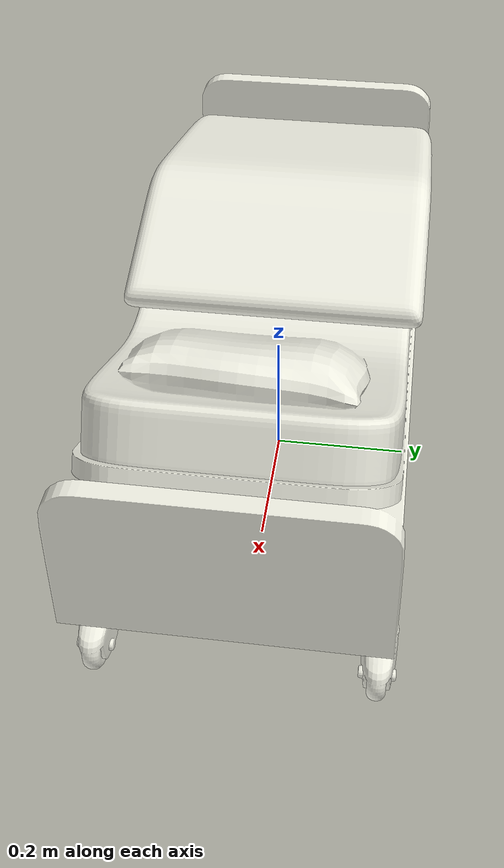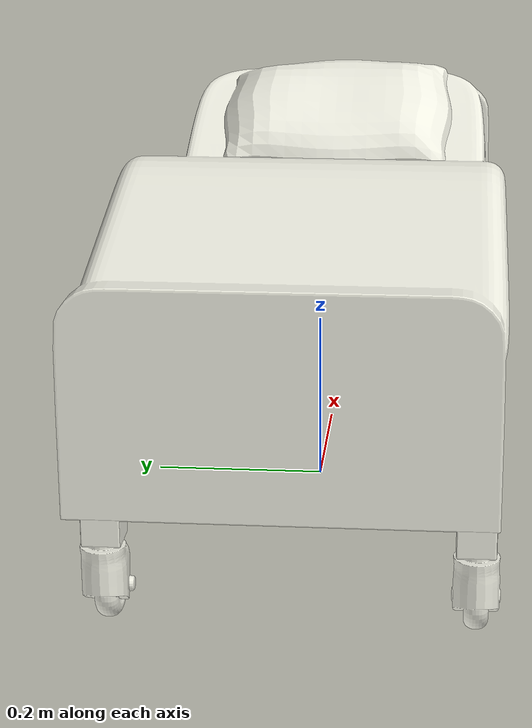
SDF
<?xml version='1.0'?>
<sdf version='1.6'>
  <model name='bed'>
    <link name='link_0'>
      <inertial>
        <mass>1</mass>
        <inertia>
          <ixx>0.166667</ixx>
          <ixy>0</ixy>
          <ixz>0</ixz>
          <iyy>0.166667</iyy>
          <iyz>0</iyz>
          <izz>0.166667</izz>
        </inertia>
      </inertial>
      <visual name='visual'>
        <pose frame=''>0 0 0 0 0 0</pose>
        <geometry>
          <mesh>
            <uri>model://bed/meshes/bed.obj</uri>
            <scale>0.05 0.05 0.05</scale>
          </mesh>
        </geometry>
        <material>
          <ambient>0.9 0.9 0.85 1</ambient> <!-- Tom claro com um toque de bege -->
          <diffuse>0.95 0.95 0.9 1</diffuse> <!-- Off-white suave -->
          <specular>0.6 0.6 0.6 1</specular> <!-- Reflexo moderado para suavidade -->
          <emissive>0 0 0 1</emissive> <!-- Sem emissão de luz -->
        </material>
      </visual>
      <collision name='collision'>
        <pose frame=''>0 0 0 0 0 0</pose>
        <geometry>
          <mesh>
            <uri>model://bed/meshes/bed.obj</uri>
            <scale>0.05 0.05 0.05</scale>
          </mesh>
        </geometry>
      </collision>
    </link>
    <static>1</static>
    <allow_auto_disable>1</allow_auto_disable>
  </model>
</sdf>
